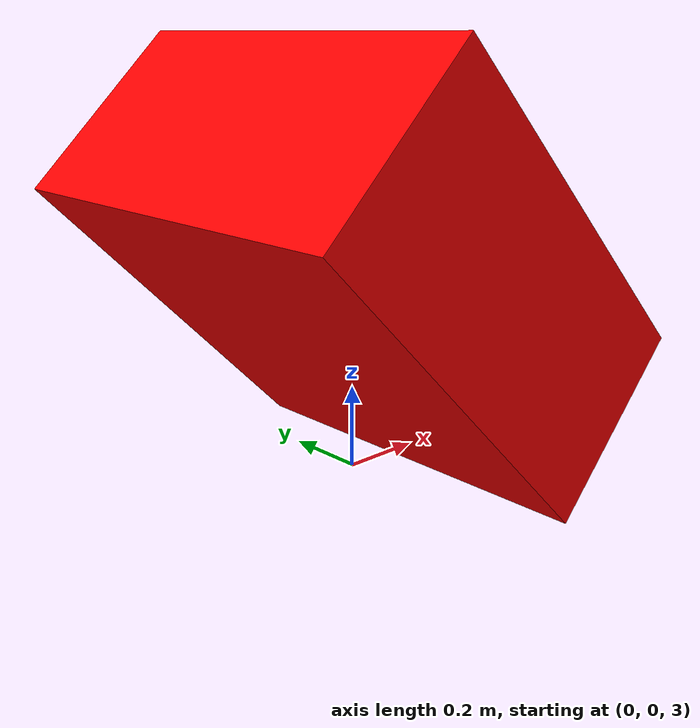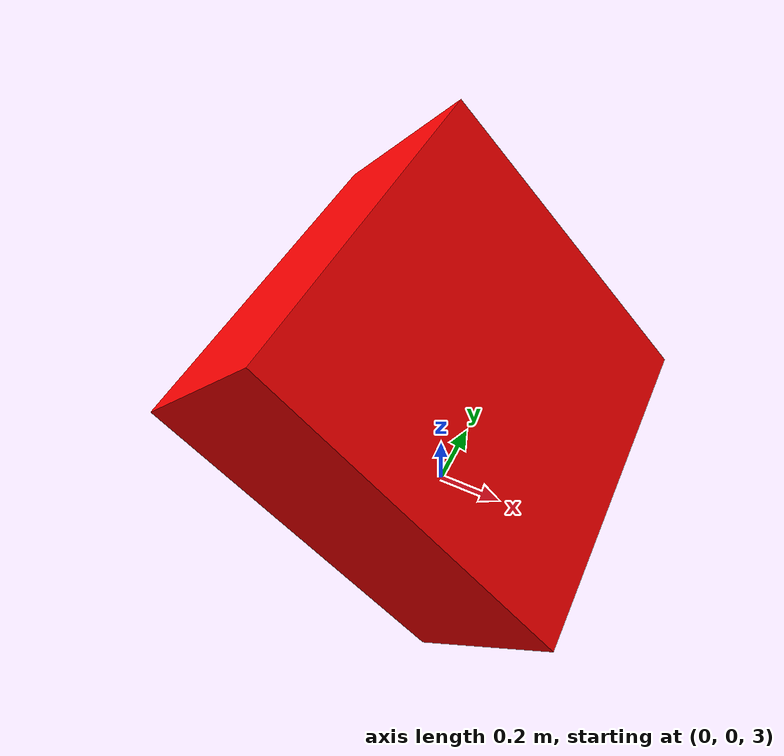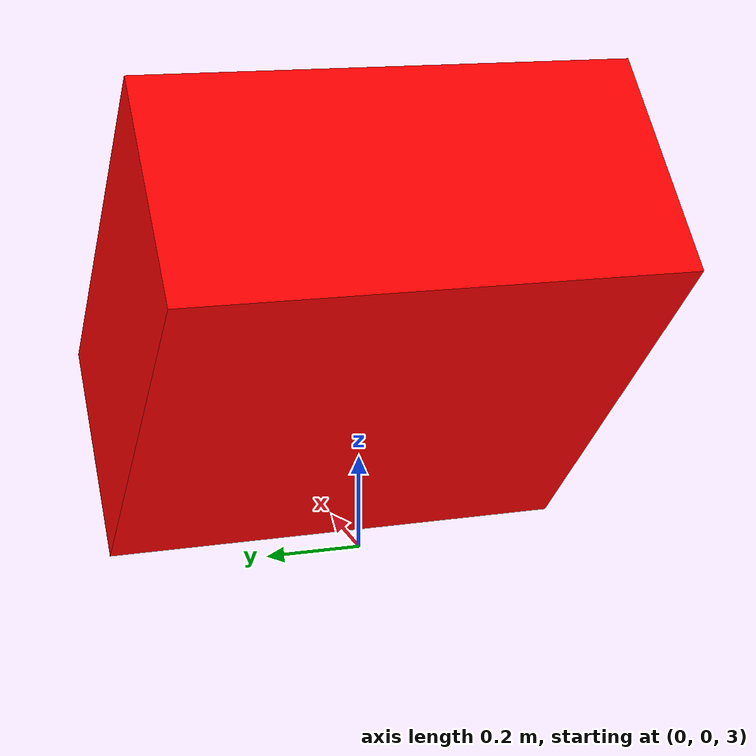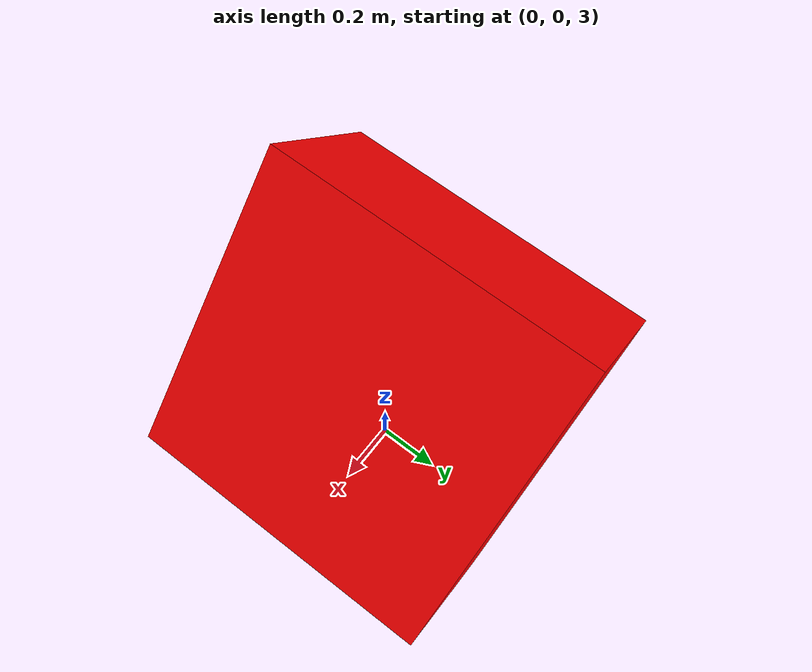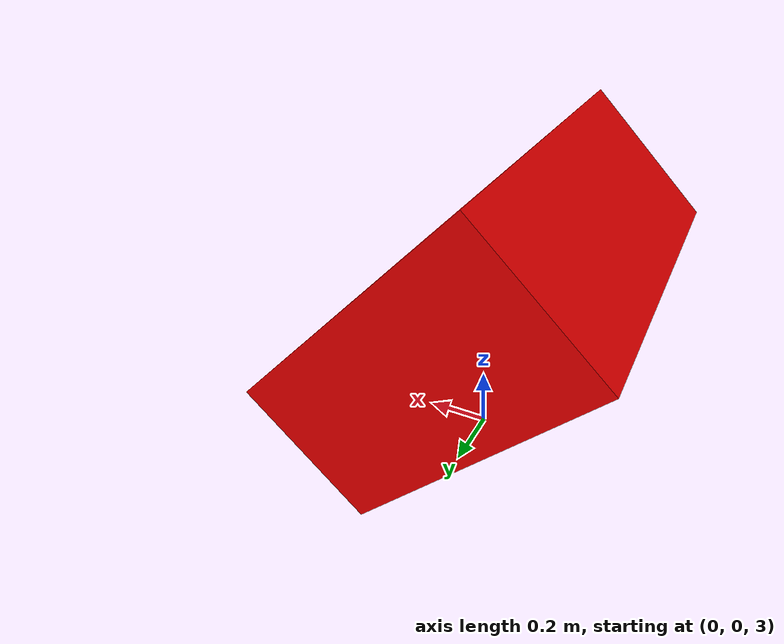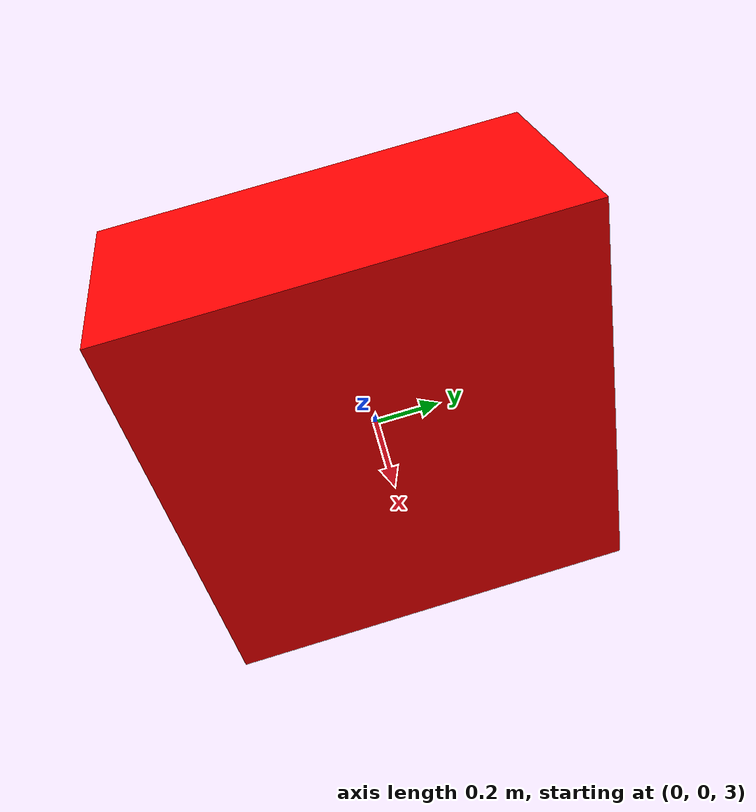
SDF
<?xml version="1.0" ?>
<!--
  Check that model and link poses are being correctly parsed.
  Both red boxes should overlap.
-->
<sdf version="1.6">
  <world name="shapes">
    <physics name="1ms" type="ignored">
      <max_step_size>0.001</max_step_size>
      <real_time_factor>1.0</real_time_factor>
    </physics>
    <plugin
      filename="gz-sim-physics-system"
      name="gz::sim::systems::Physics">
    </plugin>
    <plugin
      filename="gz-sim-user-commands-system"
      name="gz::sim::systems::UserCommands">
    </plugin>
    <plugin
      filename="gz-sim-scene-broadcaster-system"
      name="gz::sim::systems::SceneBroadcaster">
    </plugin>

    <light type="directional" name="sun">
      <cast_shadows>true</cast_shadows>
      <pose>0 0 10 0 0 0</pose>
      <diffuse>0.8 0.8 0.8 1</diffuse>
      <specular>0.2 0.2 0.2 1</specular>
      <attenuation>
        <range>1000</range>
        <constant>0.9</constant>
        <linear>0.01</linear>
        <quadratic>0.001</quadratic>
      </attenuation>
      <direction>-0.5 0.1 -0.9</direction>
    </light>

    <model name="ground_plane">
      <static>true</static>
      <link name="link">
        <collision name="collision">
          <geometry>
            <plane>
              <normal>0 0 1</normal>
              <size>100 100</size>
            </plane>
          </geometry>
        </collision>
        <visual name="visual">
          <geometry>
            <plane>
              <normal>0 0 1</normal>
              <size>100 100</size>
            </plane>
          </geometry>
          <material>
            <ambient>0.8 0.8 0.8 1</ambient>
            <diffuse>0.8 0.8 0.8 1</diffuse>
            <specular>0.8 0.8 0.8 1</specular>
          </material>
        </visual>
      </link>
    </model>

    <model name="box_model_transform">
      <static>true</static>
      <pose>0 0 3.5 0 0.78539816339 0</pose>
      <link name="box_link">
        <inertial>
          <inertia>
            <ixx>1</ixx>
            <ixy>0</ixy>
            <ixz>0</ixz>
            <iyy>1</iyy>
            <iyz>0</iyz>
            <izz>1</izz>
          </inertia>
          <mass>1.0</mass>
        </inertial>
        <collision name="box_collision">
          <geometry>
            <box>
              <size>1 1 0.5</size>
            </box>
          </geometry>
        </collision>

        <visual name="box_visual">
          <geometry>
            <box>
              <size>1 1 0.5</size>
            </box>
          </geometry>
          <material>
            <ambient>1 0 0 1</ambient>
            <diffuse>1 0 0 1</diffuse>
            <specular>1 0 0 1</specular>
          </material>
        </visual>
      </link>
    </model>

    <model name="box_link_transform">
      <pose>0 0 2 0 0 0</pose>
      <static>true</static>
      <link name="box_link">
        <pose>0 0 1.5 0 0.78539816339 0</pose>
        <inertial>
          <inertia>
            <ixx>1</ixx>
            <ixy>0</ixy>
            <ixz>0</ixz>
            <iyy>1</iyy>
            <iyz>0</iyz>
            <izz>1</izz>
          </inertia>
          <mass>1.0</mass>
        </inertial>
        <collision name="box_collision">
          <geometry>
            <box>
              <size>1 1 0.5</size>
            </box>
          </geometry>
        </collision>

        <visual name="box_visual">
          <geometry>
            <box>
              <size>1 1 0.5</size>
            </box>
          </geometry>
          <material>
            <ambient>1 0 0 1</ambient>
            <diffuse>1 0 0 1</diffuse>
            <specular>1 0 0 1</specular>
          </material>
        </visual>
      </link>
    </model>

      <plugin
      filename="gz-sim-apply-link-wrench-system"
      name="gz::sim::systems::ApplyLinkWrench">
    </plugin>

</world>
</sdf>
